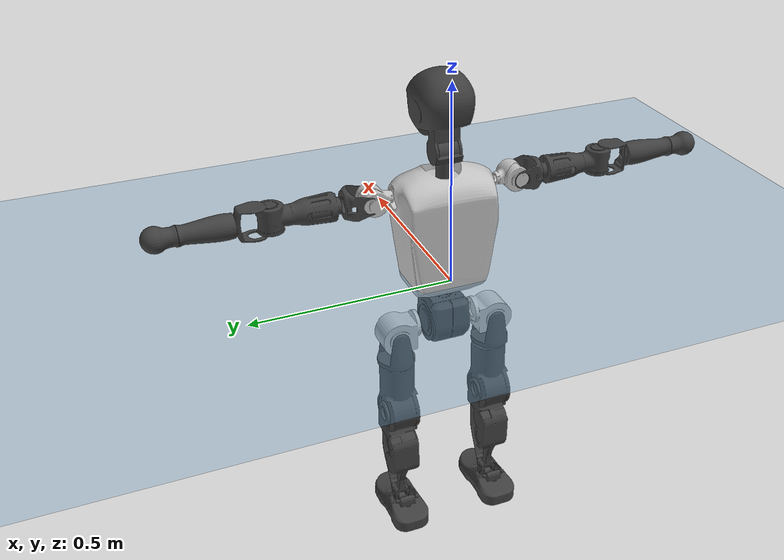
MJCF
<mujoco model="T1">
  <compiler angle="radian" assetdir="assets" balanceinertia="true" inertiafromgeom="false"/>

  <option timestep="0.005" density="1.2" viscosity="2e-05"/>

  <size nkey="1"/>

  <visual>
    <quality shadowsize="8192"/>
    <map shadowclip="0.5"/>
  </visual>

  <default>
    <default class="/">
      <joint armature="0.01" damping="0.01" frictionloss="0.1"/>
      <geom contype="0" conaffinity="0" group="1" solref="-1000 -80"/>
      <site size="0.01 0.005 0.005" group="5"/>
      <general forcelimited="true" biastype="affine" gainprm="25" biasprm="0 -25 -0.6"/>
      <default class="t1">
        <geom rgba="0.25 0.25 0.25 1"/>
        <default class="visual">
          <geom type="mesh" group="2"/>
        </default>
        <default class="collision">
          <geom group="3"/>
        </default>
        <default class="foot">
          <geom size="0.1115 0.05 0.015" type="box" condim="6" group="4" priority="1" solimp="0.015 1 0.015"/>
        </default>
        <default class="reward_collision_sphere">
          <geom group="5" rgba="1 0 0 1"/>
        </default>
      </default>
    </default>
  </default>

  <asset>
    <texture type="skybox" colorspace="auto" name="//unnamed_texture_0" builtin="gradient" rgb1="0.95 0.95 0.95" rgb2="0.95 0.95 0.95" width="100" height="600"/>
    <texture type="2d" colorspace="auto" name="texplane" builtin="checker" rgb1="0.345 0.575 0.748" rgb2="0.345 0.575 0.748" markrgb="1 1 1" width="512" height="512"/>
    <material name="MatPlane" class="/" texture="texplane" texuniform="true" texrepeat="2 2" specular="0.9"/>
    <mesh name="Trunk" class="/" file="Trunk.stl"/>
    <mesh name="H1" class="/" file="H1.stl"/>
    <mesh name="H2" class="/" file="H2.stl"/>
    <mesh name="AL1" class="/" file="AL1.stl"/>
    <mesh name="AL2" class="/" file="AL2.stl"/>
    <mesh name="AL3" class="/" file="AL3.stl"/>
    <mesh name="left_hand_link" class="/" file="left_hand_link.stl"/>
    <mesh name="AR1" class="/" file="AR1.stl"/>
    <mesh name="AR2" class="/" file="AR2.stl"/>
    <mesh name="AR3" class="/" file="AR3.stl"/>
    <mesh name="right_hand_link" class="/" file="right_hand_link.stl"/>
    <mesh name="Waist" class="/" file="Waist.stl"/>
    <mesh name="Hip_Pitch_Left" class="/" file="Hip_Pitch_Left.stl"/>
    <mesh name="Hip_Roll_Left" class="/" file="Hip_Roll_Left.stl"/>
    <mesh name="Hip_Yaw_Left" class="/" file="Hip_Yaw_Left.stl"/>
    <mesh name="Shank_Left" class="/" file="Shank_Left.stl"/>
    <mesh name="Ankle_Cross_Left" class="/" file="Ankle_Cross_Left.stl"/>
    <mesh name="left_foot_link" class="/" file="left_foot_link.stl"/>
    <mesh name="Hip_Pitch_Right" class="/" file="Hip_Pitch_Right.stl"/>
    <mesh name="Hip_Roll_Right" class="/" file="Hip_Roll_Right.stl"/>
    <mesh name="Hip_Yaw_Right" class="/" file="Hip_Yaw_Right.stl"/>
    <mesh name="Shank_Right" class="/" file="Shank_Right.stl"/>
    <mesh name="Ankle_Cross_Right" class="/" file="Ankle_Cross_Right.stl"/>
    <mesh name="right_foot_link" class="/" file="right_foot_link.stl"/>
  </asset>

  <worldbody>
    <geom name="floor" class="/" size="100 100 0.125" type="plane" group="0" material="MatPlane"/>
    <light name="toplight_shadow" class="/" pos="0 0 5" dir="0.0990148 0.0990148 -0.990148" type="directional" ambient="0.04 0.04 0.04" diffuse="0.55 0.55 0.55" specular="0.12 0.12 0.12"/>
    <light name="toplight_fill" class="/" pos="0 0 5" dir="0.0990148 0.0990148 -0.990148" type="directional" castshadow="false" ambient="0.04 0.04 0.04" diffuse="0.3 0.3 0.3" specular="0.08 0.08 0.08"/>
    <body name="trunk" childclass="t1" pos="-0.000118815 0.00097716 0.00103867" quat="1 -5.88909e-06 -1.67156e-05 1.14478e-05">
      <inertial pos="0.0383933 0.00210124 0.113175" quat="0.999944 -0.000259905 -0.0102375 0.00277998" mass="11.6116" diaginertia="0.0160727 0.209473 0.0745879"/>
      <joint name="//unnamed_joint_0" type="free" armature="0" damping="0" frictionloss="0"/>
      <geom name="//unnamed_geom_1" class="visual" rgba="0.76 0.76 0.76 1" mesh="Trunk"/>
      <geom name="//unnamed_geom_2" class="collision" size="0.0745624 0.0994166 0.149125" pos="0.0423104 0 0.126796" type="box"/>
      <geom name="//unnamed_geom_3" class="reward_collision_sphere" size="0.114329" pos="0.0423104 0 0.105664"/>
      <geom name="//unnamed_geom_4" class="reward_collision_sphere" size="0.0149125" pos="0.0423104 0.103758 0"/>
      <geom name="//unnamed_geom_5" class="reward_collision_sphere" size="0.0149125" pos="0.0423104 -0.103758 0"/>
      <geom name="//unnamed_geom_6" class="reward_collision_sphere" size="0.0149125" pos="0.0423104 0.130614 0.190195"/>
      <geom name="//unnamed_geom_7" class="reward_collision_sphere" size="0.0149125" pos="0.0423104 -0.130614 0.190195"/>
      <site name="imu" pos="-0.000125549 0.00257295 -0.00467699" size="0.00994166"/>
      <camera name="track" pos="0 -2.44137 0" quat="0.707107 0.707107 0 0" mode="trackcom"/>
      <camera name="ego_camera" pos="0.0860312 0 0.443787" quat="-0.5 -0.5 0.5 0.5"/>
      <body name="H1" pos="0.0442724 -0.00216753 0.258234" quat="1 -6.59123e-05 4.74186e-05 -8.20155e-05">
        <inertial pos="-0.000758195 0.000686163 0.0609813" quat="0.761048 -0.0220083 -0.000310665 0.648322" mass="0.426696" diaginertia="4.09973e-05 0.000592108 0.000199052"/>
        <joint name="AAHead_yaw" pos="0 0 0" axis="0.00137201 -0.00391678 0.999991" stiffness="0.000729542" range="-1.57429 1.52678" armature="0.00976823" damping="0.0169893" frictionloss="0.0866331"/>
        <geom name="//unnamed_geom_8" class="visual" mesh="H1"/>
        <body name="H2" pos="-0.00110083 0.000832225 0.0633314" quat="1 -0.000203484 -5.14394e-05 -6.33662e-05">
          <inertial pos="0.00612451 -0.00101195 0.105272" quat="0.9884 0.111846 -0.0647507 -0.0797748" mass="0.624055" diaginertia="0.000354781 0.00523419 0.00231367"/>
          <joint name="Head_pitch" pos="0 0 0" axis="0.00228217 -0.999993 0.00287049" range="-1.23055 0.347038" armature="0.00998037" damping="0.0109794" frictionloss="0.096635"/>
          <geom name="//unnamed_geom_9" class="visual" mesh="H2"/>
          <geom name="//unnamed_geom_10" class="collision" size="0.0795333" pos="0.00705174 0 0.11623"/>
          <geom name="//unnamed_geom_11" class="reward_collision_sphere" size="0.0894749" pos="0.0141035 0 0.105664"/>
        </body>
      </body>
      <body name="AL1" pos="0.040911 0.130939 0.231998" quat="0.999999 0.000143816 0.00162905 8.20143e-05">
        <inertial pos="-0.000493524 0.0552753 0.000631834" quat="0.49467 0.496183 -0.509324 0.499693" mass="0.519106" diaginertia="0.000235461 0.0036046 0.000388356"/>
        <joint name="Left_Shoulder_Pitch" pos="0 0 0" axis="-0.000322532 1 0.000728565" stiffness="0.00217352" range="-3.32589 1.2563" armature="0.00991419" damping="0.0139576" frictionloss="0.100156"/>
        <geom name="//unnamed_geom_12" class="visual" rgba="0.76 0.76 0.76 1" mesh="AL1"/>
        <body name="AL2" pos="0.00103606 0.0600659 -0.000432717" quat="1 -6.64432e-05 0.00011486 -0.000127328">
          <inertial pos="0.00499349 0.0487012 -0.000206366" quat="0.491594 0.500771 -0.491174 0.516055" mass="0.157092" diaginertia="7.039e-05 0.000943046 0.000240633"/>
          <joint name="Left_Shoulder_Roll" pos="0 0 0" axis="-0.999999 -0.000702199 -0.000878562" stiffness="9.07115e-05" range="-1.57473 1.74297" armature="0.00934924" damping="0.00974891" frictionloss="0.102507"/>
          <geom name="//unnamed_geom_13" class="visual" mesh="AL2"/>
          <body name="AL3" pos="0.000397852 0.0768146 0.000653898" quat="1 -4.14778e-05 -0.000226671 -7.21154e-05">
            <inertial pos="-0.00252204 0.104714 -0.000384566" quat="0.704438 0.709764 -0.00144145 0.000175723" mass="1.03844" diaginertia="0.00231936 0.0352144 0.000824419"/>
            <joint name="Left_Elbow_Pitch" pos="0 0 0" axis="-0.00164302 -0.999997 -0.001959" range="-2.2761 2.31361" armature="0.0101862" damping="0.0153076" frictionloss="0.0999487"/>
            <geom name="//unnamed_geom_14" class="visual" mesh="AL3"/>
            <geom name="//unnamed_geom_15" class="collision" size="0.029825 0.0745624" pos="0 0.0610344 0" quat="0.707105 0.707108 0 0" type="cylinder"/>
            <geom name="//unnamed_geom_16" class="reward_collision_sphere" size="0.03579"/>
            <body name="left_hand_link" pos="-0.000268945 0.182277 -0.00163078" quat="1 -2.56743e-05 2.87782e-05 -1.68459e-05">
              <inertial pos="0.000530533 0.133659 0.00110829" quat="0.710585 0.703605 -0.000385325 0.00308017" mass="0.320372" diaginertia="0.00139214 0.0219856 0.000282562"/>
              <joint name="Left_Elbow_Yaw" pos="0 0 0" axis="0.0076941 0.00281327 0.999966" stiffness="0.00754755" range="-2.48937 -0.0107834" armature="0.00998352" damping="0" frictionloss="0.106641"/>
              <geom name="//unnamed_geom_17" class="visual" mesh="left_hand_link"/>
              <geom name="//unnamed_geom_18" class="collision" size="0.029825 0.0869895" pos="0 0.158689 0" quat="0.707105 0.707108 0 0" type="cylinder"/>
              <geom name="//unnamed_geom_19" class="reward_collision_sphere" size="0.0497083"/>
              <geom name="//unnamed_geom_20" class="reward_collision_sphere" size="0.0347958" pos="0 0.134276 0"/>
              <geom name="//unnamed_geom_21" class="reward_collision_sphere" size="0.0347958" pos="0 0.262448 0"/>
            </body>
          </body>
        </body>
      </body>
      <body name="AR1" pos="0.0390185 -0.129061 0.230742" quat="1 0.000161373 0.000304549 4.95283e-05">
        <inertial pos="-0.00124937 -0.0548477 -0.00241183" quat="0.51389 0.492971 -0.49908 0.493777" mass="0.526925" diaginertia="0.000235883 0.00344541 0.000385382"/>
        <joint name="Right_Shoulder_Pitch" pos="0 0 0" axis="0.0040416 -0.999992 0.000265069" stiffness="0.00710516" range="-1.22871 3.315" armature="0.0101683" damping="0" frictionloss="0.087308"/>
        <geom name="//unnamed_geom_22" class="visual" rgba="0.76 0.76 0.76 1" mesh="AR1"/>
        <body name="AR2" pos="-0.0019694 -0.0564238 -9.71401e-05" quat="1 2.3872e-05 -2.27289e-05 -2.65935e-05">
          <inertial pos="0.00267513 -0.0488202 -0.000397868" quat="0.505259 0.487569 -0.520882 0.485461" mass="0.156252" diaginertia="6.91658e-05 0.000925138 0.000230976"/>
          <joint name="Right_Shoulder_Roll" pos="0 0 0" axis="-0.999991 0.00421335 -0.000397793" stiffness="0.00688245" range="-1.7355 1.5762" armature="0.00997793" damping="0" frictionloss="0.0947275"/>
          <geom name="//unnamed_geom_23" class="visual" mesh="AR2"/>
          <body name="AR3" pos="-0.00131251 -0.0738813 0.000617807" quat="1 -9.09958e-05 3.68511e-05 -2.81005e-05">
            <inertial pos="-0.0013532 -0.104629 0.000671148" quat="0.707224 0.706985 -0.000990015 -0.00231707" mass="1.00258" diaginertia="0.00224809 0.0336663 0.00082974"/>
            <joint name="Right_Elbow_Pitch" pos="0 0 0" axis="-0.00197244 0.99999 -0.00395271" range="-2.27369 2.24627" armature="0.00987134" damping="0.00881511" frictionloss="0.0968849"/>
            <geom name="//unnamed_geom_24" class="visual" mesh="AR3"/>
            <geom name="//unnamed_geom_25" class="collision" size="0.029825 0.0745624" pos="0 -0.0610344 0" quat="0.707105 0.707108 0 0" type="cylinder"/>
            <geom name="//unnamed_geom_26" class="reward_collision_sphere" size="0.03579"/>
            <body name="right_hand_link" pos="-0.00119413 -0.177691 0.00209247" quat="1 0.000230073 -0.000133835 -0.000243527">
              <inertial pos="-0.000372099 -0.132769 -0.000147692" quat="0.707226 0.706981 -0.00282235 -0.000970401" mass="0.325347" diaginertia="0.00141048 0.0218253 0.000284776"/>
              <joint name="Right_Elbow_Yaw" pos="0 0 0" axis="0.00239721 -0.0010144 0.999997" range="0.00872494 2.44219" armature="0.00964425" damping="0.0074231" frictionloss="0.111082"/>
              <geom name="//unnamed_geom_27" class="visual" mesh="right_hand_link"/>
              <geom name="//unnamed_geom_28" class="collision" size="0.029825 0.0869895" pos="0 -0.158689 0" quat="0.707105 0.707108 0 0" type="cylinder"/>
              <geom name="//unnamed_geom_29" class="reward_collision_sphere" size="0.0497083"/>
              <geom name="//unnamed_geom_30" class="reward_collision_sphere" size="0.0347958" pos="0 -0.134276 0"/>
              <geom name="//unnamed_geom_31" class="reward_collision_sphere" size="0.0347958" pos="0 -0.262448 0"/>
            </body>
          </body>
        </body>
      </body>
      <body name="Waist" pos="0.0435568 0.000527174 -0.123993" quat="1 -8.91384e-05 -0.000102892 8.2763e-05">
        <inertial pos="-0.00122147 -0.0012431 0.00720627" quat="0.983677 0.000109812 -0.179892 0.00440497" mass="2.49559" diaginertia="0.000905567 0.0142688 0.00616164"/>
        <joint name="Waist" pos="0 0 0" axis="0.00507648 0.0038482 0.99998" stiffness="0.00160667" range="-1.56934 1.56383" armature="0.0103353" damping="0.0148087" frictionloss="0.0989665"/>
        <geom name="//unnamed_geom_32" class="visual" mesh="Waist"/>
        <body name="Hip_Pitch_Left" pos="-0.000163777 0.128576 -0.00203003" quat="1 0.000205055 2.58721e-05 -8.31948e-05">
          <inertial pos="0.000686767 -0.00768215 -0.0185255" quat="0.975152 0.22104 0.0146994 0.00171234" mass="1.02844" diaginertia="0.000314363 0.00397349 0.00164179"/>
          <joint name="Left_Hip_Pitch" pos="0 0 0" axis="0.00312482 0.999995 -0.000689232" range="-1.79841 1.61686" armature="0.0111121" damping="0.0119218" frictionloss="0.0944921"/>
          <geom name="//unnamed_geom_33" class="visual" rgba="0.76 0.76 0.76 1" mesh="Hip_Pitch_Left"/>
          <body name="Hip_Roll_Left" pos="0.00216317 -0.000370491 -0.0227149" quat="1 -0.000113273 -0.000461207 0.000356318">
            <inertial pos="0.00155308 -0.000170517 -0.0573637" quat="0.715172 -0.0080612 -0.00946402 0.698838" mass="0.362284" diaginertia="0.000293999 0.00404859 0.000670631"/>
            <joint name="Left_Hip_Roll" pos="0 0 0" axis="-0.999974 0.00326254 -0.00639195" stiffness="0.00404667" range="-1.56965 0.190345" armature="0.0110738" damping="0.0175248" frictionloss="0.0993689"/>
            <geom name="//unnamed_geom_34" class="visual" mesh="Hip_Roll_Left"/>
            <geom name="//unnamed_geom_35" class="reward_collision_sphere" size="0.0546791"/>
            <body name="Hip_Yaw_Left" pos="-0.00054947 -0.000718328 -0.0846533" quat="1 -6.953e-05 0.000103456 -0.000148465">
              <inertial pos="-0.00666104 -0.00136854 -0.0939345" quat="0.697135 -0.032913 -0.0310633 0.71551" mass="2.15686" diaginertia="0.00445923 0.0665823 0.00339239"/>
              <joint name="Left_Hip_Yaw" pos="0 0 0" axis="0.00130415 -0.00116285 -0.999998" stiffness="0.00188823" range="-1.00864 1.0492" armature="0.00979905" damping="0.00739715" frictionloss="0.100028"/>
              <geom name="//unnamed_geom_36" class="visual" mesh="Hip_Yaw_Left"/>
              <geom name="//unnamed_geom_37" class="collision" size="0.0497083 0.0795333" type="cylinder"/>
              <body name="Shank_Left" pos="-0.00702477 -4.393e-05 -0.143333" quat="1 1.29664e-05 0.000197986 -4.718e-05">
                <inertial pos="-0.00373072 0.00227966 -0.129431" quat="0.997574 0.00157857 -0.0234134 0.0655457" mass="1.63975" diaginertia="0.00604172 0.0930633 0.00241199"/>
                <joint name="Left_Knee_Pitch" pos="0 0 0" axis="0.00168591 0.999994 -0.00306244" range="-0.011678 2.35317" armature="0.00984497" damping="0.0106846" frictionloss="0.1034"/>
                <geom name="//unnamed_geom_38" class="visual" mesh="Shank_Left"/>
                <geom name="//unnamed_geom_39" class="collision" size="0.0497083 0.0745624" pos="0 0 -0.126796" type="cylinder"/>
                <geom name="//unnamed_geom_40" class="reward_collision_sphere" size="0.0646208"/>
                <body name="Ankle_Cross_Left" pos="-0.00105347 0.000117053 -0.294721" quat="1 5.85287e-05 -4.40588e-05 0.000102822">
                  <inertial pos="-0.00177587 0.00120097 -0.00853306" quat="0.447494 0.55239 0.546524 0.442635" mass="0.0727336" diaginertia="5.14809e-06 6.88091e-05 1.48512e-05"/>
                  <joint name="Left_Ankle_Pitch" pos="0 0 0" axis="0.000779005 1 -0.00038258" range="-0.824147 0.341606" armature="0.0100703" damping="0.016272" frictionloss="0.0942917"/>
                  <geom name="//unnamed_geom_41" class="visual" mesh="Ankle_Cross_Left"/>
                  <body name="left_foot_link" pos="0.00107466 -0.000919266 -0.0112548" quat="1 -3.56885e-05 -0.000305008 -0.000147667">
                    <inertial pos="-0.00147117 -3.40841e-05 -0.0112739" quat="0.00388337 0.619161 -0.00282819 0.785249" mass="0.661209" diaginertia="0.000446671 0.00631188 0.00290037"/>
                    <joint name="Left_Ankle_Roll" pos="0 0 0" axis="-0.999996 -0.00248867 -0.0013481" range="-0.436859 0.440558" armature="0.00999033" damping="0.0167856" frictionloss="0.100037"/>
                    <geom name="//unnamed_geom_42" class="visual" mesh="left_foot_link"/>
                    <geom name="left_foot" class="foot" size="0.103974 0.0490543 0.0156914" pos="0.00705174 0 -0.0158496"/>
                    <geom name="//unnamed_geom_44" class="reward_collision_sphere" size="0.0516966" pos="0.00705174 0 -0.0158496"/>
                    <geom name="//unnamed_geom_45" class="reward_collision_sphere" size="0.029825" pos="0.0669915 -0.0280758 -0.0158496"/>
                    <geom name="//unnamed_geom_46" class="reward_collision_sphere" size="0.029825" pos="-0.0493622 -0.0280758 -0.0158496"/>
                    <site name="left_foot" class="foot" pos="0.00705174 0 -0.0158496" size="0.00994166"/>
                  </body>
                </body>
              </body>
            </body>
          </body>
        </body>
        <body name="Hip_Pitch_Right" pos="-0.000505836 -0.130297 -0.000195212" quat="1 0.000458956 -9.34052e-05 -0.000664168">
          <inertial pos="-0.00118398 0.0102775 -0.0168988" quat="0.972915 -0.230779 0.0112903 -0.00709038" mass="1.01553" diaginertia="0.000317977 0.0040574 0.00160999"/>
          <joint name="Right_Hip_Pitch" pos="0 0 0" axis="0.000223571 -1 -0.000111037" range="-1.57052 1.74847" armature="0.00957087" damping="0.0113782" frictionloss="0.100248"/>
          <geom name="//unnamed_geom_47" class="visual" rgba="0.76 0.76 0.76 1" mesh="Hip_Pitch_Right"/>
          <body name="Hip_Roll_Right" pos="0.00212399 0.000179684 -0.0223715" quat="1 -3.24209e-05 8.19843e-06 2.75594e-05">
            <inertial pos="0.0010911 -0.00127166 -0.0561006" quat="0.702193 -0.00979702 -0.0154786 0.711751" mass="0.385582" diaginertia="0.000304157 0.00423925 0.000681479"/>
            <joint name="Right_Hip_Roll" pos="0 0 0" axis="-0.99999 -0.000709525 0.00441987" stiffness="0.00101687" range="-0.150191 1.59106" armature="0.0099533" damping="0.00726253" frictionloss="0.0983129"/>
            <geom name="//unnamed_geom_48" class="visual" mesh="Hip_Roll_Right"/>
            <geom name="//unnamed_geom_49" class="reward_collision_sphere" size="0.0546791"/>
            <body name="Hip_Yaw_Right" pos="0.0011979 0.000948432 -0.0874616" quat="1 0.000107374 8.58304e-05 0.000177939">
              <inertial pos="-0.00507429 -0.000362225 -0.0966923" quat="0.716249 -0.0357356 -0.0350661 0.696046" mass="2.09024" diaginertia="0.00446153 0.0679093 0.00336596"/>
              <joint name="Right_Hip_Yaw" pos="0 0 0" axis="-0.00705402 -0.0141904 -0.999874" stiffness="0.00452506" range="-1.00146 0.991039" armature="0.0108954" damping="0" frictionloss="0.0991895"/>
              <geom name="//unnamed_geom_50" class="visual" mesh="Hip_Yaw_Right"/>
              <geom name="//unnamed_geom_51" class="collision" size="0.0497083 0.0795333" type="cylinder"/>
              <body name="Shank_Right" pos="-0.0087141 -0.000769517 -0.13995" quat="1 -1.79235e-05 -1.09627e-05 -3.7898e-06">
                <inertial pos="-0.00463941 -0.000788691 -0.131125" quat="0.999178 -0.000496467 -0.0247982 -0.0320525" mass="1.81899" diaginertia="0.00640511 0.0977407 0.0026594"/>
                <joint name="Right_Knee_Pitch" pos="0 0 0" axis="-0.000735189 -1 -2.86182e-05" range="-2.29583 -0.0181007" armature="0.0111485" damping="0.0126522" frictionloss="0.0999809"/>
                <geom name="//unnamed_geom_52" class="visual" mesh="Shank_Right"/>
                <geom name="//unnamed_geom_53" class="collision" size="0.0497083 0.0745624" pos="0 0 -0.126796" type="cylinder"/>
                <geom name="//unnamed_geom_54" class="reward_collision_sphere" size="0.0646208"/>
                <body name="Ankle_Cross_Right" pos="0.000125284 -0.00137686 -0.296832" quat="1 4.02185e-05 -3.32865e-05 -5.83846e-05">
                  <inertial pos="-0.00225143 -0.000289769 -0.0083851" quat="0.444367 0.548637 0.549404 0.446867" mass="0.0709777" diaginertia="5.11896e-06 7.02202e-05 1.47898e-05"/>
                  <joint name="Right_Ankle_Pitch" pos="0 0 0" axis="0.000382097 -1 0.0006174" range="-0.387778 0.828867" armature="0.0099005" damping="0.00998362" frictionloss="0.103"/>
                  <geom name="//unnamed_geom_55" class="visual" mesh="Ankle_Cross_Right"/>
                  <body name="right_foot_link" pos="0.00247795 -0.00102531 -0.012901" quat="1 -1.67389e-05 3.65477e-05 -2.06018e-05">
                    <inertial pos="-0.00255701 0.00060033 -0.00940934" quat="7.28317e-06 0.62074 9.81987e-06 0.784016" mass="0.676953" diaginertia="0.000471274 0.00637687 0.00290919"/>
                    <joint name="Right_Ankle_Roll" pos="0 0 0" axis="-0.999997 0.0020278 -0.00131606" range="-0.486491 0.437965" armature="0.0101109" damping="0" frictionloss="0.0994177"/>
                    <geom name="//unnamed_geom_56" class="visual" mesh="right_foot_link"/>
                    <geom name="right_foot" class="foot" size="0.100491 0.046546 0.0153383" pos="0.00705174 0 -0.0158496"/>
                    <geom name="//unnamed_geom_58" class="reward_collision_sphere" size="0.0397666"/>
                    <geom name="//unnamed_geom_59" class="reward_collision_sphere" size="0.029825" pos="0.00705174 0 -0.0158496"/>
                    <geom name="//unnamed_geom_60" class="reward_collision_sphere" size="0.029825" pos="0.0669915 0.0280758 -0.0158496"/>
                    <geom name="//unnamed_geom_61" class="reward_collision_sphere" size="0.029825" pos="-0.0493622 0.0280758 -0.0158496"/>
                    <site name="right_foot" class="foot" pos="0.00705174 0 -0.0158496" size="0.00994166"/>
                  </body>
                </body>
              </body>
            </body>
          </body>
        </body>
      </body>
    </body>
  </worldbody>

  <contact>
    <pair class="/" geom1="floor" geom2="left_foot" name="//unnamed_contact_0"/>
    <pair class="/" geom1="floor" geom2="right_foot" name="//unnamed_contact_1"/>
  </contact>

  <actuator>
    <general name="AAHead_yaw" class="/" joint="AAHead_yaw" forcerange="-6.69293 6.69293" gainprm="24.185" biasprm="0 -24.185 -0.583464"/>
    <general name="Head_pitch" class="/" joint="Head_pitch" forcerange="-6.95817 6.95817" gainprm="24.185" biasprm="0 -24.185 -0.583464"/>
    <general name="Left_Shoulder_Pitch" class="/" joint="Left_Shoulder_Pitch" forcerange="-17.6979 17.6979" gainprm="24.185" biasprm="0 -24.185 -0.583464"/>
    <general name="Left_Shoulder_Roll" class="/" joint="Left_Shoulder_Roll" forcerange="-18.4747 18.4747" gainprm="24.185" biasprm="0 -24.185 -0.583464"/>
    <general name="Left_Elbow_Pitch" class="/" joint="Left_Elbow_Pitch" forcerange="-18.0906 18.0906" gainprm="24.185" biasprm="0 -24.185 -0.583464"/>
    <general name="Left_Elbow_Yaw" class="/" joint="Left_Elbow_Yaw" forcerange="-18.7467 18.7467" gainprm="24.185" biasprm="0 -24.185 -0.583464"/>
    <general name="Right_Shoulder_Pitch" class="/" joint="Right_Shoulder_Pitch" forcerange="-17.2721 17.2721" gainprm="24.185" biasprm="0 -24.185 -0.583464"/>
    <general name="Right_Shoulder_Roll" class="/" joint="Right_Shoulder_Roll" forcerange="-17.961 17.961" gainprm="24.185" biasprm="0 -24.185 -0.583464"/>
    <general name="Right_Elbow_Pitch" class="/" joint="Right_Elbow_Pitch" forcerange="-19.4625 19.4625" gainprm="24.185" biasprm="0 -24.185 -0.583464"/>
    <general name="Right_Elbow_Yaw" class="/" joint="Right_Elbow_Yaw" forcerange="-17.0914 17.0914" gainprm="24.185" biasprm="0 -24.185 -0.583464"/>
    <general name="Waist" class="/" joint="Waist" forcerange="-28.8487 28.8487" gainprm="24.185" biasprm="0 -24.185 -0.583464"/>
    <general name="Left_Hip_Pitch" class="/" joint="Left_Hip_Pitch" forcerange="-44.7964 44.7964" gainprm="24.185" biasprm="0 -24.185 -0.583464"/>
    <general name="Left_Hip_Roll" class="/" joint="Left_Hip_Roll" forcerange="-31.2907 31.2907" gainprm="24.185" biasprm="0 -24.185 -0.583464"/>
    <general name="Left_Hip_Yaw" class="/" joint="Left_Hip_Yaw" forcerange="-28.0339 28.0339" gainprm="24.185" biasprm="0 -24.185 -0.583464"/>
    <general name="Left_Knee_Pitch" class="/" joint="Left_Knee_Pitch" forcerange="-59.3996 59.3996" gainprm="24.185" biasprm="0 -24.185 -0.583464"/>
    <general name="Left_Ankle_Pitch" class="/" joint="Left_Ankle_Pitch" forcerange="-20.1451 20.1451" gainprm="24.185" biasprm="0 -24.185 -0.583464"/>
    <general name="Left_Ankle_Roll" class="/" joint="Left_Ankle_Roll" forcerange="-16.0317 16.0317" gainprm="24.185" biasprm="0 -24.185 -0.583464"/>
    <general name="Right_Hip_Pitch" class="/" joint="Right_Hip_Pitch" forcerange="-44.7266 44.7266" gainprm="24.185" biasprm="0 -24.185 -0.583464"/>
    <general name="Right_Hip_Roll" class="/" joint="Right_Hip_Roll" forcerange="-29.4323 29.4323" gainprm="24.185" biasprm="0 -24.185 -0.583464"/>
    <general name="Right_Hip_Yaw" class="/" joint="Right_Hip_Yaw" forcerange="-32.5746 32.5746" gainprm="24.185" biasprm="0 -24.185 -0.583464"/>
    <general name="Right_Knee_Pitch" class="/" joint="Right_Knee_Pitch" forcerange="-59.6728 59.6728" gainprm="24.185" biasprm="0 -24.185 -0.583464"/>
    <general name="Right_Ankle_Pitch" class="/" joint="Right_Ankle_Pitch" forcerange="-20.3121 20.3121" gainprm="24.185" biasprm="0 -24.185 -0.583464"/>
    <general name="Right_Ankle_Roll" class="/" joint="Right_Ankle_Roll" forcerange="-14.8156 14.8156" gainprm="24.185" biasprm="0 -24.185 -0.583464"/>
  </actuator>

  <sensor>
    <gyro site="imu" name="imu_angular_velocity"/>
    <velocimeter site="imu" name="imu_linear_velocity"/>
    <framelinvel objtype="site" objname="left_foot" name="left_foot_global_linear_velocity"/>
    <framelinvel objtype="site" objname="right_foot" name="right_foot_global_linear_velocity"/>
  </sensor>

  <keyframe>
    <key name="home" qpos="0 0 0.6385 1 0 0 0 0 0 0 1.4 0 -0.4 0 -1.4 0 0.4 0 -0.4 0 0 0.8 -0.4 0 0.4 0 0 -0.8 0.4 0"/>
  </keyframe>
</mujoco>
